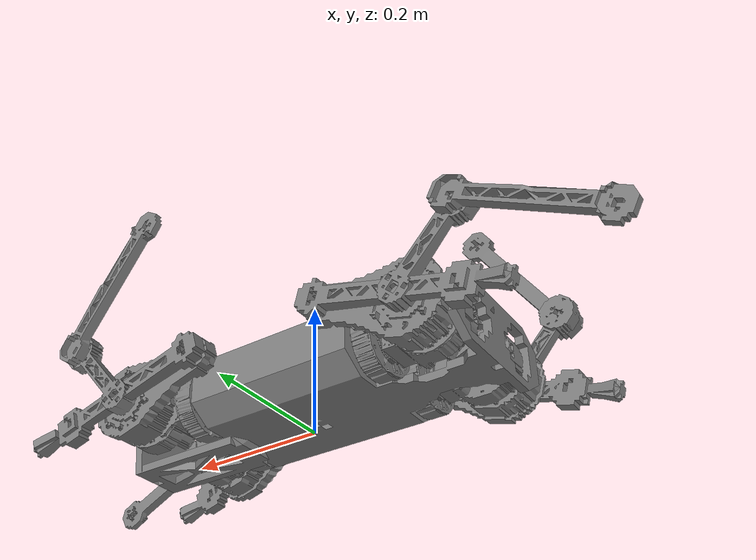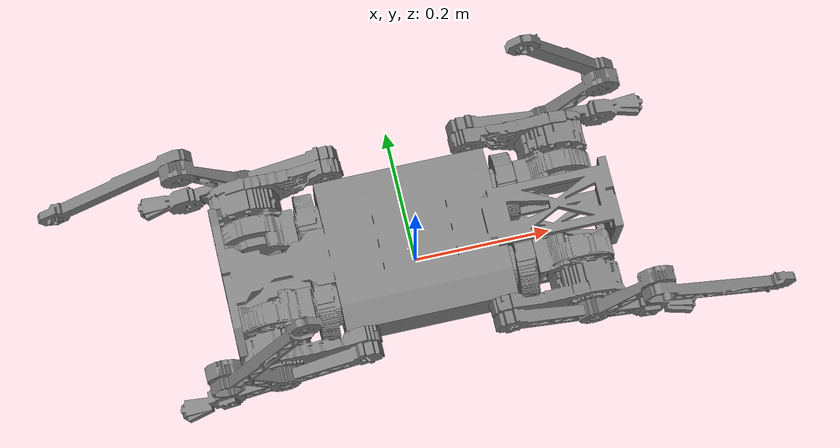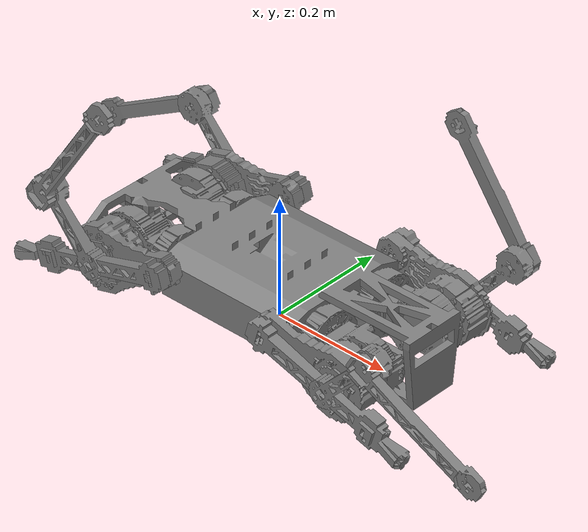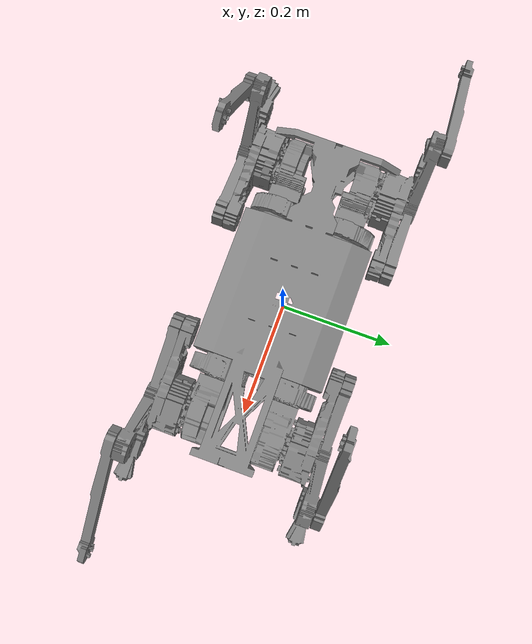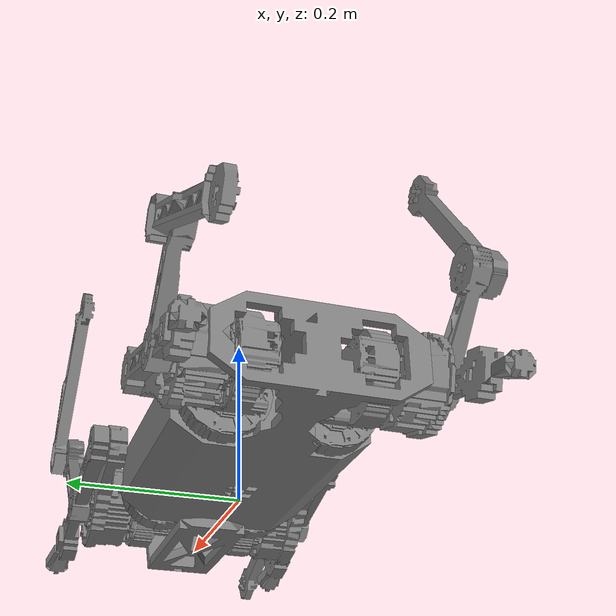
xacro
<?xml version="1.0"?>
<robot name="quadruped" xmlns:xacro="http://www.ros.org/wiki/xacro">
  <xacro:include filename="$(find wojtek_description)/urdf/body.urdf.xacro" />
  <xacro:include filename="$(find wojtek_description)/urdf/ros2_control.urdf.xacro" />
  <xacro:include filename="$(find wojtek_description)/urdf/gazebo.urdf.xacro" />

  <mujoco>
    <compiler meshdir="$(find wojtek_description)/meshes" balanceinertia="true"
      discardvisual="false" />
  </mujoco>
  <xacro:arg name="use_hardware" default="True" />
  <xacro:arg name="use_sim" default="False" />

  <xacro:wojtek_body />

  <xacro:quadruperd_ros2_control use_hardware="$(arg use_hardware)" use_sim="$(arg use_sim)" />

</robot>

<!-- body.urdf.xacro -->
<robot xmlns:xacro="http://www.ros.org/wiki/xacro" name="wojtek_body">
  <xacro:include filename="$(find wojtek_description)/urdf/inertia.urdf.xacro" />
  <xacro:include filename="$(find wojtek_description)/urdf/leg.urdf.xacro" />
  <xacro:include filename="$(find wojtek_description)/urdf/leg_v627.urdf.xacro" />

  <xacro:macro name="camera_mount">
    <link name="camera_link">
      <visual>
        <!-- Camera-body sized marker so the mount is visible in RViz;
             massless. -->
        <origin xyz="-0.01 0 0" rpy="0 0 0" />
        <geometry>
          <box size="0.02 0.09 0.025" />
        </geometry>
        <xacro:grey_material />
      </visual>
    </link>
    <joint name="camera_joint" type="fixed">
      <parent link="base_link" />
      <child link="camera_link" />
      <origin xyz="0.32 0.0 0.07" rpy="0 0.2617994 0" />
    </joint>
  </xacro:macro>

  <xacro:macro name="wojtek_body" params="with_camera:=false with_camera_mount:=false legs:=stock">
    <material name="grey">
      <color rgba="0.5 0.5 0.5 1" />
    </material>

    <link name="base_link" />

    <link name="body_link">
      <visual>
        <origin rpy="0 0 ${pi}" xyz="0.0 0 0" />
        <geometry name="base_link">
          <mesh filename="package://wojtek_description/meshes/base_link.dae" />
        </geometry>

        <xacro:grey_material />
      </visual>
      <collision>
        <origin rpy="0 0 ${pi}" xyz="0.0 0 0" />
        <geometry name="base_link">
          <mesh filename="package://wojtek_description/meshes/base_link.dae" />
        </geometry>
      </collision>
      <xacro:box_inertia m="50.0" w="0.59" h="0.225" d="0.1" xyz="0.01 0 0.06" />
    </link>

    <joint name="body_to_base_joint" type="fixed">
      <parent link="base_link" />
      <child link="body_link" />
      <origin xyz="0.0 0.0 0.0" rpy="0.0 0.0 0.0" />
    </joint>

    <link name="imu_link" />
    <joint name="imu_joint" type="fixed">
      <parent link="base_link" />
      <child link="imu_link" />
      <origin xyz="0.053 0.0 0.012" rpy="0.0 0.0 -1.5707963" />
    </joint>

    <xacro:if value="${with_camera_mount}">
      <xacro:camera_mount />
    </xacro:if>

    <xacro:if value="${with_camera}">
      <xacro:camera_mount />

      <link name="camera_depth_frame" />
      <joint name="camera_depth_joint" type="fixed">
        <parent link="camera_link" />
        <child link="camera_depth_frame" />
        <origin xyz="0 0 0" rpy="0 0 0" />
      </joint>
      <link name="camera_depth_optical_frame" />
      <joint name="camera_depth_optical_joint" type="fixed">
        <parent link="camera_depth_frame" />
        <child link="camera_depth_optical_frame" />
        <origin xyz="0 0 0" rpy="${-pi/2} 0 ${-pi/2}" />
      </joint>

      <link name="camera_color_frame" />
      <joint name="camera_color_joint" type="fixed">
        <parent link="camera_link" />
        <child link="camera_color_frame" />
        <origin xyz="0 0 0" rpy="0 0 0" />
      </joint>
      <link name="camera_color_optical_frame" />
      <joint name="camera_color_optical_joint" type="fixed">
        <parent link="camera_color_frame" />
        <child link="camera_color_optical_frame" />
        <origin xyz="0 0 0" rpy="${-pi/2} 0 ${-pi/2}" />
      </joint>
    </xacro:if>

    <xacro:if value="${legs == 'stock'}">
    <xacro:leg prefix="rear_left" xyz="-0.131 0.06 0.06" rpy="0 0 ${pi}" first_joint_offset="${pi}"
      third_joint_gear_correction_dir="-1.0" />
    <xacro:leg prefix="rear_right" xyz="-0.131 -0.06 0.06" rpy="0 0 ${pi}" first_joint_offset="0.0"
      third_joint_gear_correction_dir="1.0" />

    <xacro:leg prefix="front_right" xyz="0.131 -0.06 0.06" rpy="0 0 0" first_joint_offset="${pi}"
      third_joint_gear_correction_dir="-1.0" />
    <xacro:leg prefix="front_left" xyz="0.131 0.06 0.06" rpy="0 0 0" first_joint_offset="0.0"
      third_joint_gear_correction_dir="1.0"
    />
    </xacro:if>
    <xacro:if value="${legs == 'legs_v627'}">
      <xacro:leg_v627 prefix="rear_left" xyz="-0.131 0.06 0.06" rpy="0 0 ${pi}"
        first_joint_offset="${pi}" dir="-1.0" side="1.0" rear="true" />
      <xacro:leg_v627 prefix="rear_right" xyz="-0.131 -0.06 0.06" rpy="0 0 ${pi}"
        first_joint_offset="0.0" dir="1.0" side="-1.0" rear="true" />
      <xacro:leg_v627 prefix="front_right" xyz="0.131 -0.06 0.06" rpy="0 0 0"
        first_joint_offset="${pi}" dir="-1.0" side="-1.0" rear="false" />
      <xacro:leg_v627 prefix="front_left" xyz="0.131 0.06 0.06" rpy="0 0 0"
        first_joint_offset="0.0" dir="1.0" side="1.0" rear="false" />
    </xacro:if>
    <xacro:unless value="${legs in ('stock', 'legs_v627')}">
      ${xacro.fatal("wojtek_body: legs must be 'stock' or 'legs_v627', got '" + legs + "'")}
    </xacro:unless>
  </xacro:macro>
</robot>

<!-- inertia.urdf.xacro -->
<robot xmlns:xacro="http://www.ros.org/wiki/xacro">
  <xacro:macro name="cylinder_inertia" params="m r h xyz:='0.0 0.0 0.0' rpy:='0.0 0.0 0.0'">
    <inertial>
      <origin xyz="${xyz}" rpy="${rpy}"/>
      <mass value="${m}"/>
      <inertia  ixx="${m*(3*r*r+h*h)/12}" ixy = "0" ixz = "0"
                iyy="${m*(3*r*r+h*h)/12}" iyz = "0"
                izz="${m*r*r/2}"/>
    </inertial>
  </xacro:macro>

  <xacro:macro name="box_inertia" params="m w h d xyz:='0.0 0.0 0.0' rpy:='0.0 0.0 0.0'">
    <inertial>
      <origin xyz="${xyz}" rpy="${rpy}"/>
      <mass value="${m}"/>
      <inertia  ixx="${(m/12) * (h*h + d*d)}" ixy="0.0" ixz="0.0"
                iyy="${(m/12) * (w*w + d*d)}" iyz="0.0"
                izz="${(m/12) * (w*w + h*h)}"/>
    </inertial>
  </xacro:macro>

  <xacro:macro name="inertia_stub">
    <inertial>
      <mass value="2e-06"/>
      <inertia ixx="1.1e-09" ixy="0" ixz="0" iyy="1.1e-09" iyz="0" izz="1.1e-09"/>
    </inertial>
  </xacro:macro>

  <xacro:macro name="geometry_stub">
        <origin rpy=" 0 0 0" xyz="0.0 0.0  0.0 " />
        <geometry>
          <box size="0.0001 0.0001 0.0001 "/>
        </geometry>
  </xacro:macro>

  <xacro:macro name="grey_material">
    <material name="grey">
      <color rgba="0.5 0.5 0.5 1.0"/>
    </material>
  </xacro:macro>
</robot>

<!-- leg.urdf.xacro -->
<robot xmlns:xacro="http://www.ros.org/wiki/xacro" name="quadruped_robot">
  <xacro:include filename="$(find wojtek_description)/urdf/inertia.urdf.xacro" />

  <!-- Macro to define a leg -->
  <xacro:macro name="leg"
    params="prefix xyz rpy first_x:=0.1 first_joint_offset third_joint_gear_correction_dir ">

    <xacro:property name="zero_angle_offset" value="0.17692153346630435" />
    <!-- Define the thigh -->

    <link name="${prefix}_leg_base_link" />

    <!-- Define the joints -->
    <joint
      name="${prefix}_base_to_leg_joint" type="fixed">
      <parent link="base_link" />
      <child link="${prefix}_leg_base_link" />
      <origin xyz="${xyz}" rpy="${rpy}" />
    </joint>

    <xacro:first_link
      name="${prefix}_first_link" />

    <joint
      name="${prefix}_leg_base_to_first_link_joint" type="fixed">
      <parent link="${prefix}_leg_base_link" />
      <child link="${prefix}_first_link" />
      <origin xyz="0.0 0.0 0.0" rpy="${-pi/2.0} 0.0 0.0" />
    </joint>

    <xacro:second_link
      name="${prefix}_second_link" />

    <joint name="${prefix}_first_joint"
      type="revolute">
      <parent link="${prefix}_first_link" />
      <child link="${prefix}_second_link" />
      <origin xyz="0.031 0.0 0.0" rpy="${first_joint_offset} 0.0 0.0" />
      <axis xyz="1 0 0" />
      <limit effort="100.0" lower="-3.1416" upper="3.1416" velocity="10.0" />
      <dynamics damping="0.1" friction="0.1" />
    </joint>

    <xacro:third_link
      name="${prefix}_third_link" />

    <xacro:property name="gear_ratio" value="0.0" />

    <xacro:property name="second_joint_gear_correction" value="${third_joint_gear_correction_dir*0.2793}" />
    <xacro:property name="third_joint_gear_correction" value="${-1.117+pi}" />

    <joint name="${prefix}_second_joint"
      type="revolute">
      <parent link="${prefix}_second_link" />
      <child link="${prefix}_third_link" />
      <origin xyz="0.064 0.0 0.023"
        rpy="0.0 0.0 ${pi + second_joint_gear_correction} " />
      <axis xyz="0 0 1" />
      <limit effort="100.0" lower="1.57" upper="4.71" velocity="10.0" />
      <dynamics damping="0.1" friction="0.1" />
    </joint>

    <xacro:fourth_link
      name="${prefix}_fourth_link" />

    <joint name="${prefix}_third_joint"
      type="revolute">
      <parent link="${prefix}_third_link" />
      <child link="${prefix}_fourth_link" />
      <origin xyz="0.0 0.0 0.0555"
        rpy="0.0 0.0 ${third_joint_gear_correction_dir*third_joint_gear_correction}" />
      <axis xyz="0 0 1" />
      <limit effort="100.0" lower="0.425" upper="5.8" velocity="10.0" />
      <dynamics damping="0.1" friction="0.1" />
    </joint>

    <xacro:fifth_link
      name="${prefix}_fifth_link" />

    <joint name="${prefix}_fourth_joint"
      type="revolute">
      <parent link="${prefix}_fourth_link" />
      <child link="${prefix}_fifth_link" />
      <origin xyz="0.125 0.0 0.0255" rpy="0.0 0.0 ${pi}" />
      <axis xyz="0 0 -1" />
      <limit effort="  2.0" lower="-0.8" upper="-2.9" velocity="10.0" />
      <dynamics damping="0.1" friction="0.1" />
    </joint>

    <xacro:sixth_link
      name="${prefix}_sixth_link" />

    <joint name="${prefix}_fifth_joint"
      type="revolute">
      <parent link="${prefix}_third_link" />
      <child link="${prefix}_sixth_link" />
      <origin xyz="-0.125 0.0 0.058" rpy="0.0 0.0 0.0" />
      <axis xyz="0 0 -1" />
      <limit effort="100.0" lower="-3.14" upper="3.14" velocity="10.0" />
      <dynamics damping="0.1" friction="0.1" />
    </joint>

  </xacro:macro>

  <xacro:macro name="first_link" params="name">
    <link name="${name}">
      <visual>
        <origin rpy="0 0 0" xyz="0.0 0 0.0" />
        <geometry>
          <mesh filename="package://wojtek_description/meshes/first_link.dae" />
        </geometry>
        <xacro:grey_material />
      </visual>
      <collision name="${name}_collision">
        <origin rpy="0 0 0" xyz="0.0 0 0.0" />
        <geometry>
          <mesh filename="package://wojtek_description/meshes/first_link.dae" />
        </geometry>
      </collision>
      <xacro:cylinder_inertia m="0.6" r="0.05" h="0.04" />
    </link>
  </xacro:macro>

  <xacro:macro name="second_link" params="name">
    <link name="${name}">
      <visual>
        <origin rpy="0 0 0" xyz="0.0 0 0.0" />
        <geometry>
          <mesh filename="package://wojtek_description/meshes/second_link.dae" />
        </geometry>
        <xacro:grey_material />
      </visual>
      <collision name="${name}_collision">
        <origin rpy="0 0 0" xyz="0.0 0 0.0" />
        <geometry>
          <mesh filename="package://wojtek_description/meshes/second_link.dae" />
        </geometry>
      </collision>
      <xacro:cylinder_inertia m="0.6" r="0.05" h="0.04" xyz="0.055 0  0" />
    </link>
  </xacro:macro>

  <xacro:macro name="third_link" params="name">
    <link name="${name}">
      <visual>
        <origin rpy="0 0 0" xyz="0.0 0 0.0" />
        <geometry>
          <mesh filename="package://wojtek_description/meshes/third_link.dae" />
        </geometry>
        <xacro:grey_material />
      </visual>
      <collision name="${name}_collision">
        <origin rpy="0 0 0" xyz="0.0 0 0.0" />
        <geometry>
          <mesh filename="package://wojtek_description/meshes/third_link.dae" />
        </geometry>
      </collision>
      <xacro:cylinder_inertia m="0.6" r="0.05" h="0.04" xyz="0.0 0  0.025" />
    </link>
  </xacro:macro>

  <xacro:macro name="fourth_link" params="name">
    <link name="${name}">
      <visual>
        <origin rpy="0 0 0" xyz="0.0 0 0.0" />
        <geometry>
          <mesh filename="package://wojtek_description/meshes/fourth_link.dae" />
        </geometry>
        <xacro:grey_material />
      </visual>
      <collision name="${name}_collision">
        <origin rpy="0 0 0" xyz="0.0 0 0.0" />
        <geometry>
          <mesh filename="package://wojtek_description/meshes/fourth_link.dae" />
        </geometry>
      </collision>
      <xacro:box_inertia m="0.04" w="0.175" h="0.025" d="0.0175" xyz="0.0625 0.0  0.015" />
    </link>
  </xacro:macro>

  <xacro:macro name="fifth_link" params="name">
    <link name="${name}">
      <visual>
        <origin rpy="0 0 0" xyz="0.0 0 0.0" />
        <geometry>
          <mesh filename="package://wojtek_description/meshes/fifth_link.dae" />
        </geometry>
        <xacro:grey_material />
      </visual>
      <collision name="${name}_collision">
        <origin rpy="0 0 0" xyz="0.0 0 0.0" />
        <geometry>
          <mesh filename="package://wojtek_description/meshes/fifth_link.dae" />
        </geometry>
      </collision>
      <xacro:box_inertia m="0.05" w="0.25" h="0.04" d="0.0175" xyz="0.105 0  0.0" />
    </link>
  </xacro:macro>

  <xacro:macro name="sixth_link" params="name">
    <link name="${name}">
      <visual>
        <origin rpy="0 0 0" xyz="0.0 0 0.0" />
        <geometry>
          <mesh filename="package://wojtek_description/meshes/sixth_link.dae" />
        </geometry>
        <xacro:grey_material />
      </visual>
      <collision name="${name}_collision">
        <origin rpy="0 0 0" xyz="0.0 0 0.0" />
        <geometry>
          <mesh filename="package://wojtek_description/meshes/sixth_link.dae" />
        </geometry>
      </collision>
      <xacro:box_inertia m="0.05" w="0.25" h="0.04" d="0.0175" xyz="0.105 0  0.0" />
    </link>
  </xacro:macro>

</robot>
